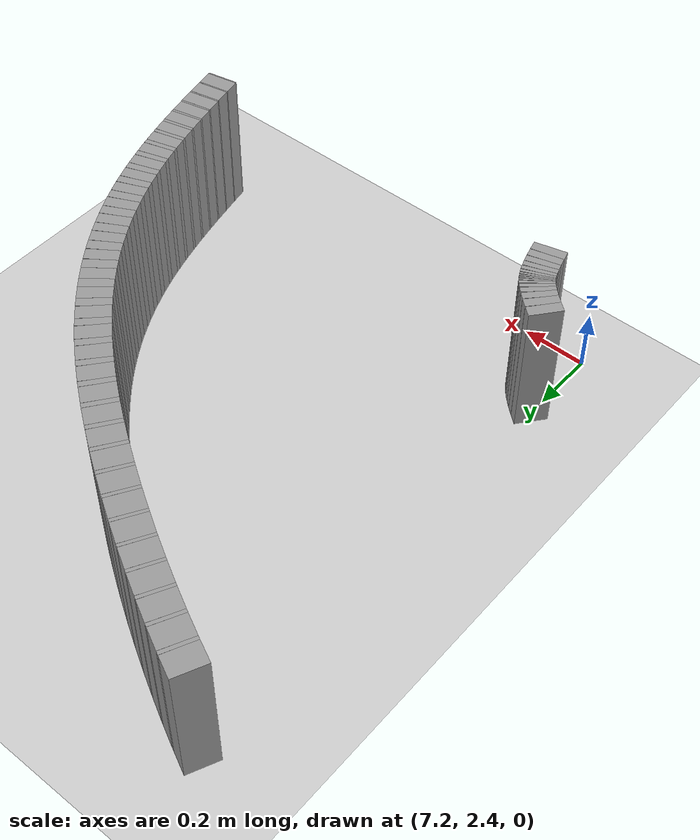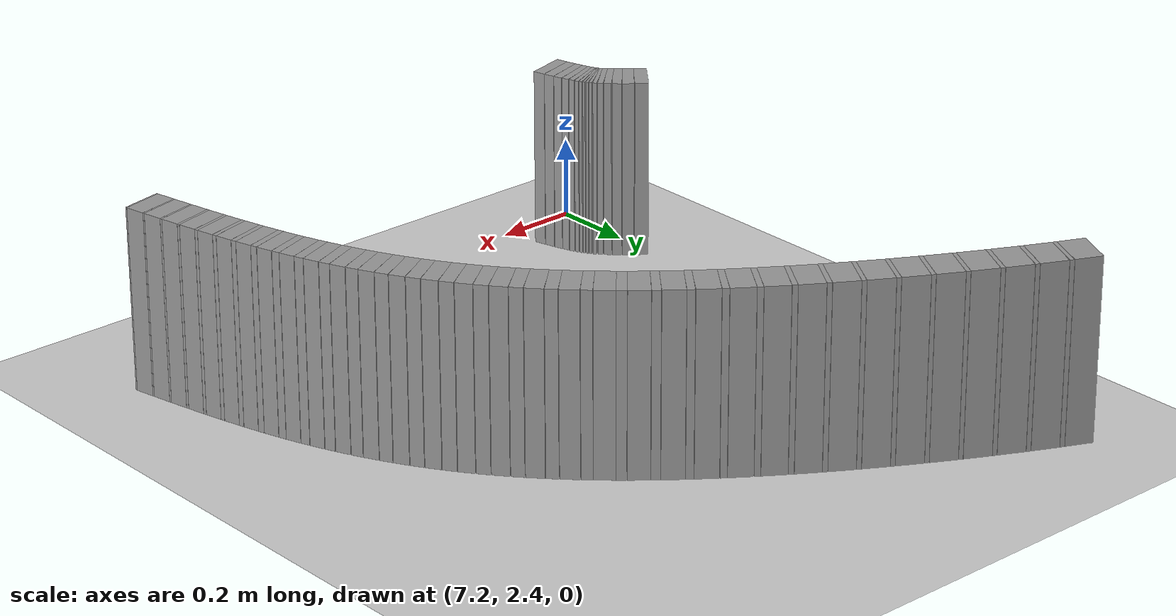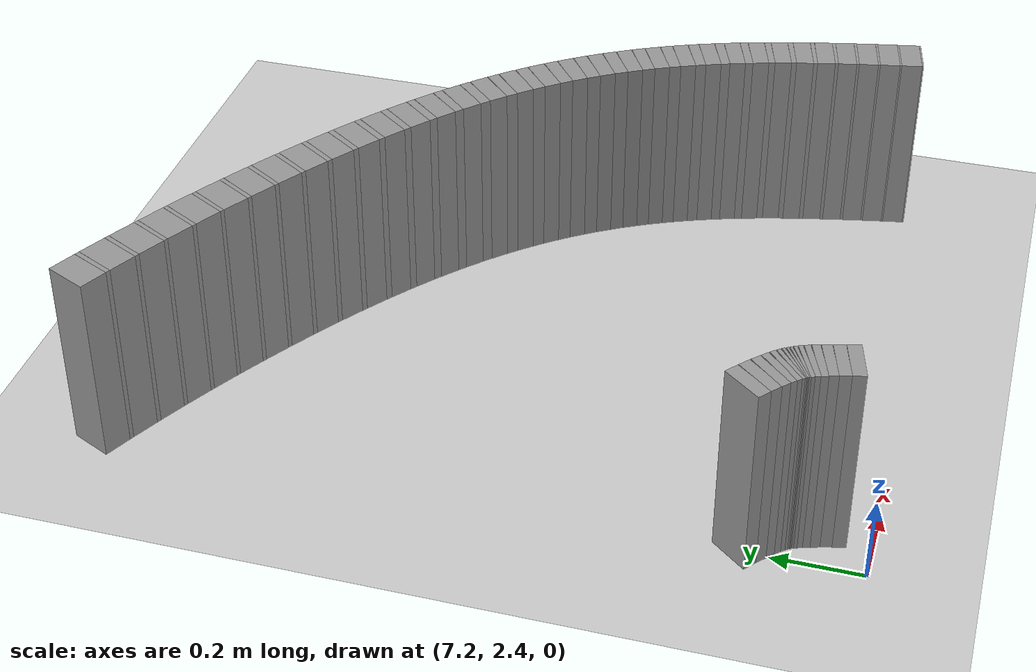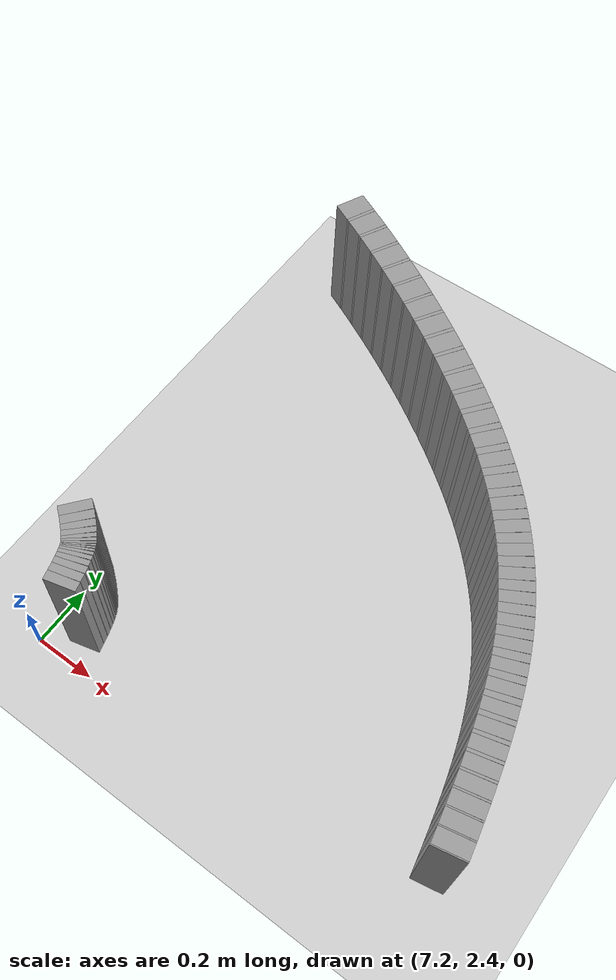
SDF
<sdf version="1.6">
 <world name="default">
  <include><uri>model://ground_plane</uri></include>
  <include><uri>model://sun</uri></include>
  <model name="wall_786_outward">
   <static>true</static>
   <link name="link">
    <collision name="collision">
     <geometry><box><size>0.029959190825049012 0.1 0.45</size></box></geometry>
    </collision>
    <visual name="visual">
     <geometry><box><size>0.029959190825049012 0.1 0.45</size></box></geometry>
     <material>
      <script><uri>file://media/materials/scripts/gazebo.material</uri><name>Gazebo/Gray</name></script>
     </material>
    </visual>
   </link>
   <pose>7.318094337156716 2.4797579617354026 0.225 0 0 1.820384158798226</pose>
  </model>
  <model name="wall_787_outward">
   <static>true</static>
   <link name="link">
    <collision name="collision">
     <geometry><box><size>0.02595779983281136 0.1 0.45</size></box></geometry>
    </collision>
    <visual name="visual">
     <geometry><box><size>0.02595779983281136 0.1 0.45</size></box></geometry>
     <material>
      <script><uri>file://media/materials/scripts/gazebo.material</uri><name>Gazebo/Gray</name></script>
     </material>
    </visual>
   </link>
   <pose>7.310925749887142 2.506780239986955 0.225 0 0 1.8413302290126208</pose>
  </model>
  <model name="wall_788_outward">
   <static>true</static>
   <link name="link">
    <collision name="collision">
     <geometry><box><size>0.02173205665908753 0.1 0.45</size></box></geometry>
    </collision>
    <visual name="visual">
     <geometry><box><size>0.02173205665908753 0.1 0.45</size></box></geometry>
     <material>
      <script><uri>file://media/materials/scripts/gazebo.material</uri><name>Gazebo/Gray</name></script>
     </material>
    </visual>
   </link>
   <pose>7.304282839976379 2.5296790952009056 0.225 0 0 1.8672551912327928</pose>
  </model>
  <model name="wall_789_outward">
   <static>true</static>
   <link name="link">
    <collision name="collision">
     <geometry><box><size>0.017439644675333918 0.1 0.45</size></box></geometry>
    </collision>
    <visual name="visual">
     <geometry><box><size>0.017439644675333918 0.1 0.45</size></box></geometry>
     <material>
      <script><uri>file://media/materials/scripts/gazebo.material</uri><name>Gazebo/Gray</name></script>
     </material>
    </visual>
   </link>
   <pose>7.298299728309972 2.548326183678234 0.225 0 0 1.8987559808369223</pose>
  </model>
  <model name="wall_790_outward">
   <static>true</static>
   <link name="link">
    <collision name="collision">
     <geometry><box><size>0.01331991774901832 0.1 0.45</size></box></geometry>
    </collision>
    <visual name="visual">
     <geometry><box><size>0.01331991774901832 0.1 0.45</size></box></geometry>
     <material>
      <script><uri>file://media/materials/scripts/gazebo.material</uri><name>Gazebo/Gray</name></script>
     </material>
    </visual>
   </link>
   <pose>7.293111576373867 2.562801666643481 0.225 0 0 1.936137763484504</pose>
  </model>
  <model name="wall_791_outward">
   <static>true</static>
   <link name="link">
    <collision name="collision">
     <geometry><box><size>0.009677869913232759 0.1 0.45</size></box></geometry>
    </collision>
    <visual name="visual">
     <geometry><box><size>0.009677869913232759 0.1 0.45</size></box></geometry>
     <material>
      <script><uri>file://media/materials/scripts/gazebo.material</uri><name>Gazebo/Gray</name></script>
     </material>
    </visual>
   </link>
   <pose>7.288809784369722 2.573462763747166 0.225 0 0 1.9793446870331972</pose>
  </model>
  <model name="wall_792_outward">
   <static>true</static>
   <link name="link">
    <collision name="collision">
     <geometry><box><size>0.006878078380580892 0.1 0.45</size></box></geometry>
    </collision>
    <visual name="visual">
     <geometry><box><size>0.006878078380580892 0.1 0.45</size></box></geometry>
     <material>
      <script><uri>file://media/materials/scripts/gazebo.material</uri><name>Gazebo/Gray</name></script>
     </material>
    </visual>
   </link>
   <pose>7.285369853489582 2.580989559782257 0.225 0 0 2.0278051115552738</pose>
  </model>
  <model name="wall_793_outward">
   <static>true</static>
   <link name="link">
    <collision name="collision">
     <geometry><box><size>0.005250872493210191 0.1 0.45</size></box></geometry>
    </collision>
    <visual name="visual">
     <geometry><box><size>0.005250872493210191 0.1 0.45</size></box></geometry>
     <material>
      <script><uri>file://media/materials/scripts/gazebo.material</uri><name>Gazebo/Gray</name></script>
     </material>
    </visual>
   </link>
   <pose>7.282571572709191 2.586367526384684 0.225 0 0 2.080391380816264</pose>
  </model>
  <model name="wall_794_outward">
   <static>true</static>
   <link name="link">
    <collision name="collision">
     <geometry><box><size>0.005049237806899675 0.1 0.45</size></box></geometry>
    </collision>
    <visual name="visual">
     <geometry><box><size>0.005049237806899675 0.1 0.45</size></box></geometry>
     <material>
      <script><uri>file://media/materials/scripts/gazebo.material</uri><name>Gazebo/Gray</name></script>
     </material>
    </visual>
   </link>
   <pose>7.279939643778052 2.5907919882582626 0.225 0 0 2.1355420514600736</pose>
  </model>
  <model name="wall_795_outward">
   <static>true</static>
   <link name="link">
    <collision name="collision">
     <geometry><box><size>0.006363853999608002 0.1 0.45</size></box></geometry>
    </collision>
    <visual name="visual">
     <geometry><box><size>0.006363853999608002 0.1 0.45</size></box></geometry>
     <material>
      <script><uri>file://media/materials/scripts/gazebo.material</uri><name>Gazebo/Gray</name></script>
     </material>
    </visual>
   </link>
   <pose>7.276738156350376 2.5955132284923317 0.225 0 0 2.191374620152198</pose>
  </model>
  <model name="wall_796_outward">
   <static>true</static>
   <link name="link">
    <collision name="collision">
     <geometry><box><size>0.009093970084061027 0.1 0.45</size></box></geometry>
    </collision>
    <visual name="visual">
     <geometry><box><size>0.009093970084061027 0.1 0.45</size></box></geometry>
     <material>
      <script><uri>file://media/materials/scripts/gazebo.material</uri><name>Gazebo/Gray</name></script>
     </material>
    </visual>
   </link>
   <pose>7.272045560779936 2.601651012564993 0.225 0 0 2.2460465179047366</pose>
  </model>
  <model name="wall_797_outward">
   <static>true</static>
   <link name="link">
    <collision name="collision">
     <geometry><box><size>0.012991846367234347 0.1 0.45</size></box></geometry>
    </collision>
    <visual name="visual">
     <geometry><box><size>0.012991846367234347 0.1 0.45</size></box></geometry>
     <material>
      <script><uri>file://media/materials/scripts/gazebo.material</uri><name>Gazebo/Gray</name></script>
     </material>
    </visual>
   </link>
   <pose>7.264885051414522 2.610052995723012 0.225 0 0 2.2979673262675013</pose>
  </model>
  <model name="wall_798_outward">
   <static>true</static>
   <link name="link">
    <collision name="collision">
     <geometry><box><size>0.017719428630093927 0.1 0.45</size></box></geometry>
    </collision>
    <visual name="visual">
     <geometry><box><size>0.017719428630093927 0.1 0.45</size></box></geometry>
     <material>
      <script><uri>file://media/materials/scripts/gazebo.material</uri><name>Gazebo/Gray</name></script>
     </material>
    </visual>
   </link>
   <pose>7.254366285982878 2.6212341606294975 0.225 0 0 2.34599515032368</pose>
  </model>
  <model name="wall_799_outward">
   <static>true</static>
   <link name="link">
    <collision name="collision">
     <geometry><box><size>0.022911207187708667 0.1 0.45</size></box></geometry>
    </collision>
    <visual name="visual">
     <geometry><box><size>0.022911207187708667 0.1 0.45</size></box></geometry>
     <material>
      <script><uri>file://media/materials/scripts/gazebo.material</uri><name>Gazebo/Gray</name></script>
     </material>
    </visual>
   </link>
   <pose>7.239800383897013 2.635388835554372 0.225 0 0 2.389471963227042</pose>
  </model>
  <model name="wall_800_outward">
   <static>true</static>
   <link name="link">
    <collision name="collision">
     <geometry><box><size>0.0282260055523648 0.1 0.45</size></box></geometry>
    </collision>
    <visual name="visual">
     <geometry><box><size>0.0282260055523648 0.1 0.45</size></box></geometry>
     <material>
      <script><uri>file://media/materials/scripts/gazebo.material</uri><name>Gazebo/Gray</name></script>
     </material>
    </visual>
   </link>
   <pose>7.220763287451988 2.652450482628737 0.225 0 0 2.4282265988677785</pose>
  </model>
  <model name="wall_801_outward">
   <static>true</static>
   <link name="link">
    <collision name="collision">
     <geometry><box><size>0.03340809664715519 0.1 0.45</size></box></geometry>
    </collision>
    <visual name="visual">
     <geometry><box><size>0.03340809664715519 0.1 0.45</size></box></geometry>
     <material>
      <script><uri>file://media/materials/scripts/gazebo.material</uri><name>Gazebo/Gray</name></script>
     </material>
    </visual>
   </link>
   <pose>7.197094110527189 2.6721782519254536 0.225 0 0 2.4624335265743027</pose>
  </model>
  <model name="wall_1153_inward">
   <static>true</static>
   <link name="link">
    <collision name="collision">
     <geometry><box><size>0.003632823642710722 0.1 0.45</size></box></geometry>
    </collision>
    <visual name="visual">
     <geometry><box><size>0.003632823642710722 0.1 0.45</size></box></geometry>
     <material>
      <script><uri>file://media/materials/scripts/gazebo.material</uri><name>Gazebo/Gray</name></script>
     </material>
    </visual>
   </link>
   <pose>8.541136601609269 2.5000086049489285 0.225 0 0 1.7618728277324125</pose>
  </model>
  <model name="wall_1154_inward">
   <static>true</static>
   <link name="link">
    <collision name="collision">
     <geometry><box><size>0.048478346776034846 0.1 0.45</size></box></geometry>
    </collision>
    <visual name="visual">
     <geometry><box><size>0.048478346776034846 0.1 0.45</size></box></geometry>
     <material>
      <script><uri>file://media/materials/scripts/gazebo.material</uri><name>Gazebo/Gray</name></script>
     </material>
    </visual>
   </link>
   <pose>8.536116207393135 2.5255759426868103 0.225 0 0 1.7649001853922124</pose>
  </model>
  <model name="wall_1155_inward">
   <static>true</static>
   <link name="link">
    <collision name="collision">
     <geometry><box><size>0.004150339172064655 0.1 0.45</size></box></geometry>
    </collision>
    <visual name="visual">
     <geometry><box><size>0.004150339172064655 0.1 0.45</size></box></geometry>
     <material>
      <script><uri>file://media/materials/scripts/gazebo.material</uri><name>Gazebo/Gray</name></script>
     </material>
    </visual>
   </link>
   <pose>8.53103346479064 2.551394729879402 0.225 0 0 1.7683588082643336</pose>
  </model>
  <model name="wall_1156_inward">
   <static>true</static>
   <link name="link">
    <collision name="collision">
     <geometry><box><size>0.047003232183221014 0.1 0.45</size></box></geometry>
    </collision>
    <visual name="visual">
     <geometry><box><size>0.047003232183221014 0.1 0.45</size></box></geometry>
     <material>
      <script><uri>file://media/materials/scripts/gazebo.material</uri><name>Gazebo/Gray</name></script>
     </material>
    </visual>
   </link>
   <pose>8.525933583742127 2.5764579019751945 0.225 0 0 1.7718174311364103</pose>
  </model>
  <model name="wall_1157_inward">
   <static>true</static>
   <link name="link">
    <collision name="collision">
     <geometry><box><size>0.0050030346093709755 0.1 0.45</size></box></geometry>
    </collision>
    <visual name="visual">
     <geometry><box><size>0.0050030346093709755 0.1 0.45</size></box></geometry>
     <material>
      <script><uri>file://media/materials/scripts/gazebo.material</uri><name>Gazebo/Gray</name></script>
     </material>
    </visual>
   </link>
   <pose>8.520731323726789 2.6019353118761277 0.225 0 0 1.7759866387224068</pose>
  </model>
  <model name="wall_1158_inward">
   <static>true</static>
   <link name="link">
    <collision name="collision">
     <geometry><box><size>0.04550685335561655 0.1 0.45</size></box></geometry>
    </collision>
    <visual name="visual">
     <geometry><box><size>0.04550685335561655 0.1 0.45</size></box></geometry>
     <material>
      <script><uri>file://media/materials/scripts/gazebo.material</uri><name>Gazebo/Gray</name></script>
     </material>
    </visual>
   </link>
   <pose>8.515492707755685 2.62664094096953 0.225 0 0 1.780155846308802</pose>
  </model>
  <model name="wall_1159_inward">
   <static>true</static>
   <link name="link">
    <collision name="collision">
     <geometry><box><size>0.006239964646486417 0.1 0.45</size></box></geometry>
    </collision>
    <visual name="visual">
     <geometry><box><size>0.006239964646486417 0.1 0.45</size></box></geometry>
     <material>
      <script><uri>file://media/materials/scripts/gazebo.material</uri><name>Gazebo/Gray</name></script>
     </material>
    </visual>
   </link>
   <pose>8.510099487176781 2.6519459710140554 0.225 0 0 1.7853558402821226</pose>
  </model>
  <model name="wall_1160_inward">
   <static>true</static>
   <link name="link">
    <collision name="collision">
     <geometry><box><size>0.04402303920930956 0.1 0.45</size></box></geometry>
    </collision>
    <visual name="visual">
     <geometry><box><size>0.04402303920930956 0.1 0.45</size></box></geometry>
     <material>
      <script><uri>file://media/materials/scripts/gazebo.material</uri><name>Gazebo/Gray</name></script>
     </material>
    </visual>
   </link>
   <pose>8.5046367902338 2.6764765534425803 0.225 0 0 1.790555834255387</pose>
  </model>
  <model name="wall_1161_inward">
   <static>true</static>
   <link name="link">
    <collision name="collision">
     <geometry><box><size>0.007899403560071357 0.1 0.45</size></box></geometry>
    </collision>
    <visual name="visual">
     <geometry><box><size>0.007899403560071357 0.1 0.45</size></box></geometry>
     <material>
      <script><uri>file://media/materials/scripts/gazebo.material</uri><name>Gazebo/Gray</name></script>
     </material>
    </visual>
   </link>
   <pose>8.498952019560072 2.7018076535123052 0.225 0 0 1.7971387180994804</pose>
  </model>
  <model name="wall_1162_inward">
   <static>true</static>
   <link name="link">
    <collision name="collision">
     <geometry><box><size>0.042589658745115264 0.1 0.45</size></box></geometry>
    </collision>
    <visual name="visual">
     <geometry><box><size>0.042589658745115264 0.1 0.45</size></box></geometry>
     <material>
      <script><uri>file://media/materials/scripts/gazebo.material</uri><name>Gazebo/Gray</name></script>
     </material>
    </visual>
   </link>
   <pose>8.493150273921309 2.7263763827406233 0.225 0 0 1.8037216019436721</pose>
  </model>
  <model name="wall_1163_inward">
   <static>true</static>
   <link name="link">
    <collision name="collision">
     <geometry><box><size>0.009997418458002047 0.1 0.45</size></box></geometry>
    </collision>
    <visual name="visual">
     <geometry><box><size>0.009997418458002047 0.1 0.45</size></box></geometry>
     <material>
      <script><uri>file://media/materials/scripts/gazebo.material</uri><name>Gazebo/Gray</name></script>
     </material>
    </visual>
   </link>
   <pose>8.487040592996788 2.7519500915594657 0.225 0 0 1.8120528803709315</pose>
  </model>
  <model name="wall_1164_inward">
   <static>true</static>
   <link name="link">
    <collision name="collision">
     <geometry><box><size>0.04124212436004942 0.1 0.45</size></box></geometry>
    </collision>
    <visual name="visual">
     <geometry><box><size>0.04124212436004942 0.1 0.45</size></box></geometry>
     <material>
      <script><uri>file://media/materials/scripts/gazebo.material</uri><name>Gazebo/Gray</name></script>
     </material>
    </visual>
   </link>
   <pose>8.48075278963204 2.776786135149893 0.225 0 0 1.8203841587981997</pose>
  </model>
  <model name="wall_1165_inward">
   <static>true</static>
   <link name="link">
    <collision name="collision">
     <geometry><box><size>0.012567412384048399 0.1 0.45</size></box></geometry>
    </collision>
    <visual name="visual">
     <geometry><box><size>0.012567412384048399 0.1 0.45</size></box></geometry>
     <material>
      <script><uri>file://media/materials/scripts/gazebo.material</uri><name>Gazebo/Gray</name></script>
     </material>
    </visual>
   </link>
   <pose>8.474043504486755 2.8028406518710347 0.225 0 0 1.830857193905433</pose>
  </model>
  <model name="wall_1166_inward">
   <static>true</static>
   <link name="link">
    <collision name="collision">
     <geometry><box><size>0.040019774954883854 0.1 0.45</size></box></geometry>
    </collision>
    <visual name="visual">
     <geometry><box><size>0.040019774954883854 0.1 0.45</size></box></geometry>
     <material>
      <script><uri>file://media/materials/scripts/gazebo.material</uri><name>Gazebo/Gray</name></script>
     </material>
    </visual>
   </link>
   <pose>8.467080154668068 2.8281951590871097 0.225 0 0 1.8413302290126168</pose>
  </model>
  <model name="wall_1167_inward">
   <static>true</static>
   <link name="link">
    <collision name="collision">
     <geometry><box><size>0.015554541729219364 0.1 0.45</size></box></geometry>
    </collision>
    <visual name="visual">
     <geometry><box><size>0.015554541729219364 0.1 0.45</size></box></geometry>
     <material>
      <script><uri>file://media/materials/scripts/gazebo.material</uri><name>Gazebo/Gray</name></script>
     </material>
    </visual>
   </link>
   <pose>8.459557180247755 2.854944081988445 0.225 0 0 1.854292710122766</pose>
  </model>
  <model name="wall_1168_inward">
   <static>true</static>
   <link name="link">
    <collision name="collision">
     <geometry><box><size>0.03896099937542461 0.1 0.45</size></box></geometry>
    </collision>
    <visual name="visual">
     <geometry><box><size>0.03896099937542461 0.1 0.45</size></box></geometry>
     <material>
      <script><uri>file://media/materials/scripts/gazebo.material</uri><name>Gazebo/Gray</name></script>
     </material>
    </visual>
   </link>
   <pose>8.451690824103643 2.8810416113746995 0.225 0 0 1.867255191232806</pose>
  </model>
  <model name="wall_1169_inward">
   <static>true</static>
   <link name="link">
    <collision name="collision">
     <geometry><box><size>0.01889969231650676 0.1 0.45</size></box></geometry>
    </collision>
    <visual name="visual">
     <geometry><box><size>0.01889969231650676 0.1 0.45</size></box></geometry>
     <material>
      <script><uri>file://media/materials/scripts/gazebo.material</uri><name>Gazebo/Gray</name></script>
     </material>
    </visual>
   </link>
   <pose>8.443097248677518 2.9086653277350303 0.225 0 0 1.8830055860348507</pose>
  </model>
  <model name="wall_1170_inward">
   <static>true</static>
   <link name="link">
    <collision name="collision">
     <geometry><box><size>0.03810650399696751 0.1 0.45</size></box></geometry>
    </collision>
    <visual name="visual">
     <geometry><box><size>0.03810650399696751 0.1 0.45</size></box></geometry>
     <material>
      <script><uri>file://media/materials/scripts/gazebo.material</uri><name>Gazebo/Gray</name></script>
     </material>
    </visual>
   </link>
   <pose>8.43405733348203 2.935696085636865 0.225 0 0 1.8987559808368915</pose>
  </model>
  <model name="wall_1171_inward">
   <static>true</static>
   <link name="link">
    <collision name="collision">
     <geometry><box><size>0.02242776368099366 0.1 0.45</size></box></geometry>
    </collision>
    <visual name="visual">
     <geometry><box><size>0.02242776368099366 0.1 0.45</size></box></geometry>
     <material>
      <script><uri>file://media/materials/scripts/gazebo.material</uri><name>Gazebo/Gray</name></script>
     </material>
    </visual>
   </link>
   <pose>8.424110139650463 2.964280663394111 0.225 0 0 1.917446872160704</pose>
  </model>
  <model name="wall_1172_inward">
   <static>true</static>
   <link name="link">
    <collision name="collision">
     <geometry><box><size>0.03749985260577837 0.1 0.45</size></box></geometry>
    </collision>
    <visual name="visual">
     <geometry><box><size>0.03749985260577837 0.1 0.45</size></box></geometry>
     <material>
      <script><uri>file://media/materials/scripts/gazebo.material</uri><name>Gazebo/Gray</name></script>
     </material>
    </visual>
   </link>
   <pose>8.41360147610787 2.9923399637617463 0.225 0 0 1.9361377634845347</pose>
  </model>
  <model name="wall_1173_inward">
   <static>true</static>
   <link name="link">
    <collision name="collision">
     <geometry><box><size>0.025922137667815485 0.1 0.45</size></box></geometry>
    </collision>
    <visual name="visual">
     <geometry><box><size>0.025922137667815485 0.1 0.45</size></box></geometry>
     <material>
      <script><uri>file://media/materials/scripts/gazebo.material</uri><name>Gazebo/Gray</name></script>
     </material>
    </visual>
   </link>
   <pose>8.402011722051878 3.021855237749431 0.225 0 0 1.957741225258879</pose>
  </model>
  <model name="wall_1174_inward">
   <static>true</static>
   <link name="link">
    <collision name="collision">
     <geometry><box><size>0.03718293701468176 0.1 0.45</size></box></geometry>
    </collision>
    <visual name="visual">
     <geometry><box><size>0.03718293701468176 0.1 0.45</size></box></geometry>
     <material>
      <script><uri>file://media/materials/scripts/gazebo.material</uri><name>Gazebo/Gray</name></script>
     </material>
    </visual>
   </link>
   <pose>8.389734747143468 3.050919408876993 0.225 0 0 1.979344687033185</pose>
  </model>
  <model name="wall_1175_inward">
   <static>true</static>
   <link name="link">
    <collision name="collision">
     <geometry><box><size>0.02907340966982004 0.1 0.45</size></box></geometry>
    </collision>
    <visual name="visual">
     <geometry><box><size>0.02907340966982004 0.1 0.45</size></box></geometry>
     <material>
      <script><uri>file://media/materials/scripts/gazebo.material</uri><name>Gazebo/Gray</name></script>
     </material>
    </visual>
   </link>
   <pose>8.376252154870253 3.0811772493916965 0.225 0 0 2.0035748992942124</pose>
  </model>
  <model name="wall_1176_inward">
   <static>true</static>
   <link name="link">
    <collision name="collision">
     <geometry><box><size>0.03719856875728413 0.1 0.45</size></box></geometry>
    </collision>
    <visual name="visual">
     <geometry><box><size>0.03719856875728413 0.1 0.45</size></box></geometry>
     <material>
      <script><uri>file://media/materials/scripts/gazebo.material</uri><name>Gazebo/Gray</name></script>
     </material>
    </visual>
   </link>
   <pose>8.361948307377336 3.1110642867052727 0.225 0 0 2.027805111555296</pose>
  </model>
  <model name="wall_1177_inward">
   <static>true</static>
   <link name="link">
    <collision name="collision">
     <geometry><box><size>0.031548126241302536 0.1 0.45</size></box></geometry>
    </collision>
    <visual name="visual">
     <geometry><box><size>0.031548126241302536 0.1 0.45</size></box></geometry>
     <material>
      <script><uri>file://media/materials/scripts/gazebo.material</uri><name>Gazebo/Gray</name></script>
     </material>
    </visual>
   </link>
   <pose>8.34641078562963 3.141722232192614 0.225 0 0 2.054098246185763</pose>
  </model>
  <model name="wall_1178_inward">
   <static>true</static>
   <link name="link">
    <collision name="collision">
     <geometry><box><size>0.03757978583920933 0.1 0.45</size></box></geometry>
    </collision>
    <visual name="visual">
     <geometry><box><size>0.03757978583920933 0.1 0.45</size></box></geometry>
     <material>
      <script><uri>file://media/materials/scripts/gazebo.material</uri><name>Gazebo/Gray</name></script>
     </material>
    </visual>
   </link>
   <pose>8.329914335883473 3.1720921072286483 0.225 0 0 2.080391380816228</pose>
  </model>
  <model name="wall_1179_inward">
   <static>true</static>
   <link name="link">
    <collision name="collision">
     <geometry><box><size>0.033086208893607645 0.1 0.45</size></box></geometry>
    </collision>
    <visual name="visual">
     <geometry><box><size>0.033086208893607645 0.1 0.45</size></box></geometry>
     <material>
      <script><uri>file://media/materials/scripts/gazebo.material</uri><name>Gazebo/Gray</name></script>
     </material>
    </visual>
   </link>
   <pose>8.312282957456228 3.2027077706668554 0.225 0 0 2.1079667161381623</pose>
  </model>
  <model name="wall_1180_inward">
   <static>true</static>
   <link name="link">
    <collision name="collision">
     <geometry><box><size>0.038352757030354886 0.1 0.45</size></box></geometry>
    </collision>
    <visual name="visual">
     <geometry><box><size>0.038352757030354886 0.1 0.45</size></box></geometry>
     <material>
      <script><uri>file://media/materials/scripts/gazebo.material</uri><name>Gazebo/Gray</name></script>
     </material>
    </visual>
   </link>
   <pose>8.293554518116139 3.2331197060152244 0.225 0 0 2.1355420514600616</pose>
  </model>
  <model name="wall_1181_inward">
   <static>true</static>
   <link name="link">
    <collision name="collision">
     <geometry><box><size>0.03349519024704086 0.1 0.45</size></box></geometry>
    </collision>
    <visual name="visual">
     <geometry><box><size>0.03349519024704086 0.1 0.45</size></box></geometry>
     <material>
      <script><uri>file://media/materials/scripts/gazebo.material</uri><name>Gazebo/Gray</name></script>
     </material>
    </visual>
   </link>
   <pose>8.273936579077926 3.263209871874808 0.225 0 0 2.1634583358061206</pose>
  </model>
  <model name="wall_1182_inward">
   <static>true</static>
   <link name="link">
    <collision name="collision">
     <geometry><box><size>0.039523633029039246 0.1 0.45</size></box></geometry>
    </collision>
    <visual name="visual">
     <geometry><box><size>0.039523633029039246 0.1 0.45</size></box></geometry>
     <material>
      <script><uri>file://media/materials/scripts/gazebo.material</uri><name>Gazebo/Gray</name></script>
     </material>
    </visual>
   </link>
   <pose>8.253090248359968 3.2931783507292365 0.225 0 0 2.1913746201521884</pose>
  </model>
  <model name="wall_1183_inward">
   <static>true</static>
   <link name="link">
    <collision name="collision">
     <geometry><box><size>0.03279905342419612 0.1 0.45</size></box></geometry>
    </collision>
    <visual name="visual">
     <geometry><box><size>0.03279905342419612 0.1 0.45</size></box></geometry>
     <material>
      <script><uri>file://media/materials/scripts/gazebo.material</uri><name>Gazebo/Gray</name></script>
     </material>
    </visual>
   </link>
   <pose>8.231701120281537 3.3223314943959585 0.225 0 0 2.218710569028471</pose>
  </model>
  <model name="wall_1184_inward">
   <static>true</static>
   <link name="link">
    <collision name="collision">
     <geometry><box><size>0.0410793686280842 0.1 0.45</size></box></geometry>
    </collision>
    <visual name="visual">
     <geometry><box><size>0.0410793686280842 0.1 0.45</size></box></geometry>
     <material>
      <script><uri>file://media/materials/scripts/gazebo.material</uri><name>Gazebo/Gray</name></script>
     </material>
    </visual>
   </link>
   <pose>8.208964396474537 3.3514398267346035 0.225 0 0 2.246046517904753</pose>
  </model>
  <model name="wall_1185_inward">
   <static>true</static>
   <link name="link">
    <collision name="collision">
     <geometry><box><size>0.031148985971186132 0.1 0.45</size></box></geometry>
    </collision>
    <visual name="visual">
     <geometry><box><size>0.031148985971186132 0.1 0.45</size></box></geometry>
     <material>
      <script><uri>file://media/materials/scripts/gazebo.material</uri><name>Gazebo/Gray</name></script>
     </material>
    </visual>
   </link>
   <pose>8.186077414186936 3.3793719635115647 0.225 0 0 2.2720069220861325</pose>
  </model>
  <model name="wall_1186_inward">
   <static>true</static>
   <link name="link">
    <collision name="collision">
     <geometry><box><size>0.042982706450630535 0.1 0.45</size></box></geometry>
    </collision>
    <visual name="visual">
     <geometry><box><size>0.042982706450630535 0.1 0.45</size></box></geometry>
     <material>
      <script><uri>file://media/materials/scripts/gazebo.material</uri><name>Gazebo/Gray</name></script>
     </material>
    </visual>
   </link>
   <pose>8.161743069349829 3.407327124919701 0.225 0 0 2.297967326267516</pose>
  </model>
  <model name="wall_1187_inward">
   <static>true</static>
   <link name="link">
    <collision name="collision">
     <geometry><box><size>0.028813924902757426 0.1 0.45</size></box></geometry>
    </collision>
    <visual name="visual">
     <geometry><box><size>0.028813924902757426 0.1 0.45</size></box></geometry>
     <material>
      <script><uri>file://media/materials/scripts/gazebo.material</uri><name>Gazebo/Gray</name></script>
     </material>
    </visual>
   </link>
   <pose>8.137623673887745 3.4339121825396948 0.225 0 0 2.3219812382955936</pose>
  </model>
  <model name="wall_1188_inward">
   <static>true</static>
   <link name="link">
    <collision name="collision">
     <geometry><box><size>0.045175644889111674 0.1 0.45</size></box></geometry>
    </collision>
    <visual name="visual">
     <geometry><box><size>0.045175644889111674 0.1 0.45</size></box></geometry>
     <material>
      <script><uri>file://media/materials/scripts/gazebo.material</uri><name>Gazebo/Gray</name></script>
     </material>
    </visual>
   </link>
   <pose>8.111982575503571 3.4605760256943316 0.225 0 0 2.345995150323645</pose>
  </model>
  <model name="wall_1189_inward">
   <static>true</static>
   <link name="link">
    <collision name="collision">
     <geometry><box><size>0.02608403325761964 0.1 0.45</size></box></geometry>
    </collision>
    <visual name="visual">
     <geometry><box><size>0.02608403325761964 0.1 0.45</size></box></geometry>
     <material>
      <script><uri>file://media/materials/scripts/gazebo.material</uri><name>Gazebo/Gray</name></script>
     </material>
    </visual>
   </link>
   <pose>8.086846408396447 3.48582517082298 0.225 0 0 2.367733556775372</pose>
  </model>
  <model name="wall_1190_inward">
   <static>true</static>
   <link name="link">
    <collision name="collision">
     <geometry><box><size>0.04758415205169756 0.1 0.45</size></box></geometry>
    </collision>
    <visual name="visual">
     <geometry><box><size>0.04758415205169756 0.1 0.45</size></box></geometry>
     <material>
      <script><uri>file://media/materials/scripts/gazebo.material</uri><name>Gazebo/Gray</name></script>
     </material>
    </visual>
   </link>
   <pose>8.060144546341464 3.5111947257461598 0.225 0 0 2.389471963227025</pose>
  </model>
  <model name="wall_1191_inward">
   <static>true</static>
   <link name="link">
    <collision name="collision">
     <geometry><box><size>0.023251326250996063 0.1 0.45</size></box></geometry>
    </collision>
    <visual name="visual">
     <geometry><box><size>0.023251326250996063 0.1 0.45</size></box></geometry>
     <material>
      <script><uri>file://media/materials/scripts/gazebo.material</uri><name>Gazebo/Gray</name></script>
     </material>
    </visual>
   </link>
   <pose>8.03412873560146 3.5352257470310384 0.225 0 0 2.4088492810474134</pose>
  </model>
  <model name="wall_1192_inward">
   <static>true</static>
   <link name="link">
    <collision name="collision">
     <geometry><box><size>0.050116930703057734 0.1 0.45</size></box></geometry>
    </collision>
    <visual name="visual">
     <geometry><box><size>0.050116930703057734 0.1 0.45</size></box></geometry>
     <material>
      <script><uri>file://media/materials/scripts/gazebo.material</uri><name>Gazebo/Gray</name></script>
     </material>
    </visual>
   </link>
   <pose>8.006538594169337 3.559400113534717 0.225 0 0 2.428226598867788</pose>
  </model>
  <model name="wall_1193_inward">
   <static>true</static>
   <link name="link">
    <collision name="collision">
     <geometry><box><size>0.020523155988494513 0.1 0.45</size></box></geometry>
    </collision>
    <visual name="visual">
     <geometry><box><size>0.020523155988494513 0.1 0.45</size></box></geometry>
     <material>
      <script><uri>file://media/materials/scripts/gazebo.material</uri><name>Gazebo/Gray</name></script>
     </material>
    </visual>
   </link>
   <pose>7.979717158172858 3.5823792522103117 0.225 0 0 2.445330062721063</pose>
  </model>
  <model name="wall_1194_inward">
   <static>true</static>
   <link name="link">
    <collision name="collision">
     <geometry><box><size>0.052682856626533846 0.1 0.45</size></box></geometry>
    </collision>
    <visual name="visual">
     <geometry><box><size>0.052682856626533846 0.1 0.45</size></box></geometry>
     <material>
      <script><uri>file://media/materials/scripts/gazebo.material</uri><name>Gazebo/Gray</name></script>
     </material>
    </visual>
   </link>
   <pose>7.951347722010265 3.60550664057764 0.225 0 0 2.462433526574301</pose>
  </model>
  <model name="wall_1195_inward">
   <static>true</static>
   <link name="link">
    <collision name="collision">
     <geometry><box><size>0.01802132924958696 0.1 0.45</size></box></geometry>
    </collision>
    <visual name="visual">
     <geometry><box><size>0.01802132924958696 0.1 0.45</size></box></geometry>
     <material>
      <script><uri>file://media/materials/scripts/gazebo.material</uri><name>Gazebo/Gray</name></script>
     </material>
    </visual>
   </link>
   <pose>7.92375600765115 3.627606736495272 0.225 0 0 2.477451865508244</pose>
  </model>
  <model name="wall_1196_inward">
   <static>true</static>
   <link name="link">
    <collision name="collision">
     <geometry><box><size>0.055188434930492615 0.1 0.45</size></box></geometry>
    </collision>
    <visual name="visual">
     <geometry><box><size>0.055188434930492615 0.1 0.45</size></box></geometry>
     <material>
      <script><uri>file://media/materials/scripts/gazebo.material</uri><name>Gazebo/Gray</name></script>
     </material>
    </visual>
   </link>
   <pose>7.894678633930035 3.6498411164052227 0.225 0 0 2.4924702044421854</pose>
  </model>
  <model name="wall_1197_inward">
   <static>true</static>
   <link name="link">
    <collision name="collision">
     <geometry><box><size>0.015867486634115673 0.1 0.45</size></box></geometry>
    </collision>
    <visual name="visual">
     <geometry><box><size>0.015867486634115673 0.1 0.45</size></box></geometry>
     <material>
      <script><uri>file://media/materials/scripts/gazebo.material</uri><name>Gazebo/Gray</name></script>
     </material>
    </visual>
   </link>
   <pose>7.8663136800794815 3.6712333372030455 0.225 0 0 2.505693495327907</pose>
  </model>
  <model name="wall_1198_inward">
   <static>true</static>
   <link name="link">
    <collision name="collision">
     <geometry><box><size>0.05755302801520279 0.1 0.45</size></box></geometry>
    </collision>
    <visual name="visual">
     <geometry><box><size>0.05755302801520279 0.1 0.45</size></box></geometry>
     <material>
      <script><uri>file://media/materials/scripts/gazebo.material</uri><name>Gazebo/Gray</name></script>
     </material>
    </visual>
   </link>
   <pose>7.836554921948886 3.6927279734525573 0.225 0 0 2.5189167862136754</pose>
  </model>
  <model name="wall_1199_inward">
   <static>true</static>
   <link name="link">
    <collision name="collision">
     <geometry><box><size>0.01406584469897194 0.1 0.45</size></box></geometry>
    </collision>
    <visual name="visual">
     <geometry><box><size>0.01406584469897194 0.1 0.45</size></box></geometry>
     <material>
      <script><uri>file://media/materials/scripts/gazebo.material</uri><name>Gazebo/Gray</name></script>
     </material>
    </visual>
   </link>
   <pose>7.807418487493091 3.71354518056984 0.225 0 0 2.5306385918917713</pose>
  </model>
  <model name="wall_1200_inward">
   <static>true</static>
   <link name="link">
    <collision name="collision">
     <geometry><box><size>0.05970554417999227 0.1 0.45</size></box></geometry>
    </collision>
    <visual name="visual">
     <geometry><box><size>0.05970554417999227 0.1 0.45</size></box></geometry>
     <material>
      <script><uri>file://media/materials/scripts/gazebo.material</uri><name>Gazebo/Gray</name></script>
     </material>
    </visual>
   </link>
   <pose>7.777006323153282 3.7344168328090017 0.225 0 0 2.5423603975698192</pose>
  </model>
  <model name="wall_1201_inward">
   <static>true</static>
   <link name="link">
    <collision name="collision">
     <geometry><box><size>0.012650127712659423 0.1 0.45</size></box></geometry>
    </collision>
    <visual name="visual">
     <geometry><box><size>0.012650127712659423 0.1 0.45</size></box></geometry>
     <material>
      <script><uri>file://media/materials/scripts/gazebo.material</uri><name>Gazebo/Gray</name></script>
     </material>
    </visual>
   </link>
   <pose>7.747094475954214 3.7547661872671974 0.225 0 0 2.5529023659228427</pose>
  </model>
  <model name="wall_1202_inward">
   <static>true</static>
   <link name="link">
    <collision name="collision">
     <geometry><box><size>0.06159621132970843 0.1 0.45</size></box></geometry>
    </collision>
    <visual name="visual">
     <geometry><box><size>0.06159621132970843 0.1 0.45</size></box></geometry>
     <material>
      <script><uri>file://media/materials/scripts/gazebo.material</uri><name>Gazebo/Gray</name></script>
     </material>
    </visual>
   </link>
   <pose>7.716041444959892 3.7751086879207323 0.225 0 0 2.5634443342759514</pose>
  </model>
  <model name="wall_1203_inward">
   <static>true</static>
   <link name="link">
    <collision name="collision">
     <geometry><box><size>0.011576082028359544 0.1 0.45</size></box></geometry>
    </collision>
    <visual name="visual">
     <geometry><box><size>0.011576082028359544 0.1 0.45</size></box></geometry>
     <material>
      <script><uri>file://media/materials/scripts/gazebo.material</uri><name>Gazebo/Gray</name></script>
     </material>
    </visual>
   </link>
   <pose>7.685371138676874 3.7950551625989526 0.225 0 0 2.573091218925888</pose>
  </model>
  <model name="wall_1204_inward">
   <static>true</static>
   <link name="link">
    <collision name="collision">
     <geometry><box><size>0.06319593826987872 0.1 0.45</size></box></geometry>
    </collision>
    <visual name="visual">
     <geometry><box><size>0.06319593826987872 0.1 0.45</size></box></geometry>
     <material>
      <script><uri>file://media/materials/scripts/gazebo.material</uri><name>Gazebo/Gray</name></script>
     </material>
    </visual>
   </link>
   <pose>7.653702757161788 3.8149249977015884 0.225 0 0 2.5827381035758448</pose>
  </model>
  <model name="wall_1205_inward">
   <static>true</static>
   <link name="link">
    <collision name="collision">
     <geometry><box><size>0.010834693193353052 0.1 0.45</size></box></geometry>
    </collision>
    <visual name="visual">
     <geometry><box><size>0.010834693193353052 0.1 0.45</size></box></geometry>
     <material>
      <script><uri>file://media/materials/scripts/gazebo.material</uri><name>Gazebo/Gray</name></script>
     </material>
    </visual>
   </link>
   <pose>7.622293093373145 3.8345094983216867 0.225 0 0 2.5917671372494526</pose>
  </model>
  <model name="wall_1206_inward">
   <static>true</static>
   <link name="link">
    <collision name="collision">
     <geometry><box><size>0.06449365034359364 0.1 0.45</size></box></geometry>
    </collision>
    <visual name="visual">
     <geometry><box><size>0.06449365034359364 0.1 0.45</size></box></geometry>
     <material>
      <script><uri>file://media/materials/scripts/gazebo.material</uri><name>Gazebo/Gray</name></script>
     </material>
    </visual>
   </link>
   <pose>7.590029010524564 3.8539415479183905 0.225 0 0 2.600796170923094</pose>
  </model>
  <model name="wall_1207_inward">
   <static>true</static>
   <link name="link">
    <collision name="collision">
     <geometry><box><size>0.010383412304937834 0.1 0.45</size></box></geometry>
    </collision>
    <visual name="visual">
     <geometry><box><size>0.010383412304937834 0.1 0.45</size></box></geometry>
     <material>
      <script><uri>file://media/materials/scripts/gazebo.material</uri><name>Gazebo/Gray</name></script>
     </material>
    </visual>
   </link>
   <pose>7.557910037868165 3.8731770018578477 0.225 0 0 2.609449122489673</pose>
  </model>
  <model name="wall_1208_inward">
   <static>true</static>
   <link name="link">
    <collision name="collision">
     <geometry><box><size>0.06550023115617308 0.1 0.45</size></box></geometry>
    </collision>
    <visual name="visual">
     <geometry><box><size>0.06550023115617308 0.1 0.45</size></box></geometry>
     <material>
      <script><uri>file://media/materials/scripts/gazebo.material</uri><name>Gazebo/Gray</name></script>
     </material>
    </visual>
   </link>
   <pose>7.52507202963012 3.892183167188975 0.225 0 0 2.6181020740563037</pose>
  </model>
  <model name="wall_1209_inward">
   <static>true</static>
   <link name="link">
    <collision name="collision">
     <geometry><box><size>0.010190035531778729 0.1 0.45</size></box></geometry>
    </collision>
    <visual name="visual">
     <geometry><box><size>0.010190035531778729 0.1 0.45</size></box></geometry>
     <material>
      <script><uri>file://media/materials/scripts/gazebo.material</uri><name>Gazebo/Gray</name></script>
     </material>
    </visual>
   </link>
   <pose>7.492273666071643 3.911064624580442 0.225 0 0 2.6265938723905973</pose>
  </model>
  <model name="wall_1210_inward">
   <static>true</static>
   <link name="link">
    <collision name="collision">
     <geometry><box><size>0.0662439382935968 0.1 0.45</size></box></geometry>
    </collision>
    <visual name="visual">
     <geometry><box><size>0.0662439382935968 0.1 0.45</size></box></geometry>
     <material>
      <script><uri>file://media/materials/scripts/gazebo.material</uri><name>Gazebo/Gray</name></script>
     </material>
    </visual>
   </link>
   <pose>7.458876185978248 3.929642413549862 0.225 0 0 2.635085670724866</pose>
  </model>
  <model name="wall_1211_inward">
   <static>true</static>
   <link name="link">
    <collision name="collision">
     <geometry><box><size>0.010242821404948452 0.1 0.45</size></box></geometry>
    </collision>
    <visual name="visual">
     <geometry><box><size>0.010242821404948452 0.1 0.45</size></box></geometry>
     <material>
      <script><uri>file://media/materials/scripts/gazebo.material</uri><name>Gazebo/Gray</name></script>
     </material>
    </visual>
   </link>
   <pose>7.425413432956578 3.948156945769341 0.225 0 0 2.6436214588810967</pose>
  </model>
  <model name="wall_1212_inward">
   <static>true</static>
   <link name="link">
    <collision name="collision">
     <geometry><box><size>0.06676582303528779 0.1 0.45</size></box></geometry>
    </collision>
    <visual name="visual">
     <geometry><box><size>0.06676582303528779 0.1 0.45</size></box></geometry>
     <material>
      <script><uri>file://media/materials/scripts/gazebo.material</uri><name>Gazebo/Gray</name></script>
     </material>
    </visual>
   </link>
   <pose>7.391450294785146 3.9662973872912555 0.225 0 0 2.652157247037288</pose>
  </model>
  <model name="wall_1213_inward">
   <static>true</static>
   <link name="link">
    <collision name="collision">
     <geometry><box><size>0.010443755793015526 0.1 0.45</size></box></geometry>
    </collision>
    <visual name="visual">
     <geometry><box><size>0.010443755793015526 0.1 0.45</size></box></geometry>
     <material>
      <script><uri>file://media/materials/scripts/gazebo.material</uri><name>Gazebo/Gray</name></script>
     </material>
    </visual>
   </link>
   <pose>7.35735657705572 3.9844063622196915 0.225 0 0 2.660860486737523</pose>
  </model>
  <model name="wall_1214_inward">
   <static>true</static>
   <link name="link">
    <collision name="collision">
     <geometry><box><size>0.06711250574192186 0.1 0.45</size></box></geometry>
    </collision>
    <visual name="visual">
     <geometry><box><size>0.06711250574192186 0.1 0.45</size></box></geometry>
     <material>
      <script><uri>file://media/materials/scripts/gazebo.material</uri><name>Gazebo/Gray</name></script>
     </material>
    </visual>
   </link>
   <pose>7.322839769200631 4.00207894348595 0.225 0 0 2.6695637264377856</pose>
  </model>
  <model name="wall_1215_inward">
   <static>true</static>
   <link name="link">
    <collision name="collision">
     <geometry><box><size>0.010776803293846778 0.1 0.45</size></box></geometry>
    </collision>
    <visual name="visual">
     <geometry><box><size>0.010776803293846778 0.1 0.45</size></box></geometry>
     <material>
      <script><uri>file://media/materials/scripts/gazebo.material</uri><name>Gazebo/Gray</name></script>
     </material>
    </visual>
   </link>
   <pose>7.28813199710154 4.0197436565605456 0.225 0 0 2.678544516572475</pose>
  </model>
  <model name="wall_1216_inward">
   <static>true</static>
   <link name="link">
    <collision name="collision">
     <geometry><box><size>0.06733975355721634 0.1 0.45</size></box></geometry>
    </collision>
    <visual name="visual">
     <geometry><box><size>0.06733975355721634 0.1 0.45</size></box></geometry>
     <material>
      <script><uri>file://media/materials/scripts/gazebo.material</uri><name>Gazebo/Gray</name></script>
     </material>
    </visual>
   </link>
   <pose>7.253052895318941 4.036918961474427 0.225 0 0 2.6875253067072156</pose>
  </model>
  <model name="wall_1217_inward">
   <static>true</static>
   <link name="link">
    <collision name="collision">
     <geometry><box><size>0.011197947889239964 0.1 0.45</size></box></geometry>
    </collision>
    <visual name="visual">
     <geometry><box><size>0.011197947889239964 0.1 0.45</size></box></geometry>
     <material>
      <script><uri>file://media/materials/scripts/gazebo.material</uri><name>Gazebo/Gray</name></script>
     </material>
    </visual>
   </link>
   <pose>7.2177404395209654 4.054096175637216 0.225 0 0 2.6968570653852755</pose>
  </model>
  <model name="wall_1218_inward">
   <static>true</static>
   <link name="link">
    <collision name="collision">
     <geometry><box><size>0.06750052025070583 0.1 0.45</size></box></geometry>
    </collision>
    <visual name="visual">
     <geometry><box><size>0.06750052025070583 0.1 0.45</size></box></geometry>
     <material>
      <script><uri>file://media/materials/scripts/gazebo.material</uri><name>Gazebo/Gray</name></script>
     </material>
    </visual>
   </link>
   <pose>7.182084755053681 4.070740031309086 0.225 0 0 2.7061888240632954</pose>
  </model>
 </world>
</sdf>
